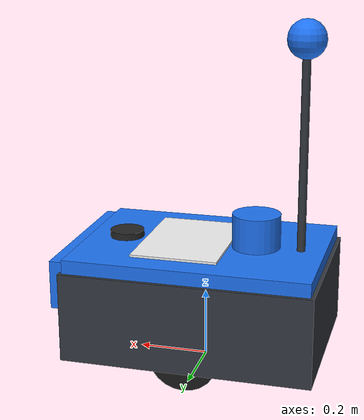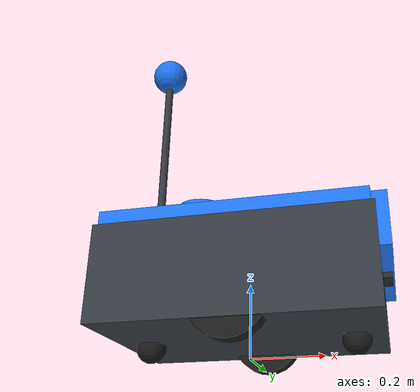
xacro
<?xml version="1.0"?>
<robot name="warehouse_amr" xmlns:xacro="http://www.ros.org/wiki/xacro">

  <!-- Arguments -->
  <xacro:arg name="robot_name" default="Alpha" />
  <xacro:arg name="robot_color" default="Blue" />
  <xacro:arg name="robot_namespace" default="robot_alpha" />
  <xacro:arg name="robot_id" default="1" />

  <xacro:property name="name" value="$(arg robot_name)" />
  <xacro:property name="color" value="$(arg robot_color)" />
  <xacro:property name="ns" value="$(arg robot_namespace)" />
  <xacro:property name="id" value="$(arg robot_id)" />

  <!-- Dimensions -->
  <xacro:property name="chassis_length" value="0.72" />
  <xacro:property name="chassis_width" value="0.52" />
  <xacro:property name="chassis_height" value="0.26" />
  <xacro:property name="wheel_radius" value="0.10" />
  <xacro:property name="wheel_width" value="0.05" />
  <xacro:property name="wheel_separation" value="0.46" />
  <xacro:property name="caster_radius" value="0.04" />

  <!-- Colors Selection -->
  <material name="chassis_dark">
    <color rgba="0.2 0.22 0.25 1.0" />
  </material>

  <material name="robot_accent">
    <xacro:if value="${color == 'Blue'}">
      <color rgba="0.12 0.45 0.95 1.0" />
    </xacro:if>
    <xacro:if value="${color == 'Red'}">
      <color rgba="0.95 0.15 0.15 1.0" />
    </xacro:if>
    <xacro:if value="${color == 'Green'}">
      <color rgba="0.15 0.85 0.25 1.0" />
    </xacro:if>
    <xacro:if value="${color == 'Yellow'}">
      <color rgba="0.95 0.85 0.10 1.0" />
    </xacro:if>
    <xacro:if value="${color == 'Purple'}">
      <color rgba="0.75 0.18 0.92 1.0" />
    </xacro:if>
  </material>

  <xacro:if value="${color == 'Blue'}">
    <xacro:property name="gz_diffuse" value="0.12 0.45 0.95 1.0" />
    <xacro:property name="gz_ambient" value="0.10 0.35 0.85 1.0" />
    <xacro:property name="gz_emissive" value="0.08 0.20 0.45 1.0" />
  </xacro:if>
  <xacro:if value="${color == 'Red'}">
    <xacro:property name="gz_diffuse" value="0.95 0.15 0.15 1.0" />
    <xacro:property name="gz_ambient" value="0.85 0.10 0.10 1.0" />
    <xacro:property name="gz_emissive" value="0.45 0.08 0.08 1.0" />
  </xacro:if>
  <xacro:if value="${color == 'Green'}">
    <xacro:property name="gz_diffuse" value="0.15 0.85 0.25 1.0" />
    <xacro:property name="gz_ambient" value="0.10 0.75 0.20 1.0" />
    <xacro:property name="gz_emissive" value="0.08 0.40 0.12 1.0" />
  </xacro:if>
  <xacro:if value="${color == 'Yellow'}">
    <xacro:property name="gz_diffuse" value="0.95 0.85 0.10 1.0" />
    <xacro:property name="gz_ambient" value="0.85 0.75 0.08 1.0" />
    <xacro:property name="gz_emissive" value="0.40 0.35 0.04 1.0" />
  </xacro:if>
  <xacro:if value="${color == 'Purple'}">
    <xacro:property name="gz_diffuse" value="0.75 0.18 0.92 1.0" />
    <xacro:property name="gz_ambient" value="0.65 0.12 0.80 1.0" />
    <xacro:property name="gz_emissive" value="0.35 0.08 0.40 1.0" />
  </xacro:if>

  <material name="wheel_black">
    <color rgba="0.1 0.1 0.1 1.0" />
  </material>
  <material name="sensor_black">
    <color rgba="0.15 0.15 0.15 1.0" />
  </material>
  <material name="badge_white">
    <color rgba="0.95 0.95 0.95 1.0" />
  </material>

  <!-- Base Footprint -->
  <link name="${ns}/base_footprint" />

  <joint name="${ns}/base_joint" type="fixed">
    <parent link="${ns}/base_footprint" />
    <child link="${ns}/base_link" />
    <origin xyz="0 0 ${wheel_radius}" rpy="0 0 0" />
  </joint>

  <!-- Base Link / Lower Chassis -->
  <link name="${ns}/base_link">
    <inertial>
      <mass value="25.0" />
      <origin xyz="0 0 0.08" rpy="0 0 0" />
      <inertia ixx="0.45" ixy="0.0" ixz="0.0"
               iyy="0.65" iyz="0.0" izz="0.85" />
    </inertial>

    <!-- Main Rugged Body -->
    <visual>
      <origin xyz="0 0 0.08" rpy="0 0 0" />
      <geometry>
        <box size="${chassis_length} ${chassis_width} ${chassis_height}" />
      </geometry>
      <material name="chassis_dark" />
    </visual>
    <collision>
      <origin xyz="0 0 0.08" rpy="0 0 0" />
      <geometry>
        <box size="${chassis_length} ${chassis_width} ${chassis_height}" />
      </geometry>
    </collision>

  </link>

  <!-- Visual Colored Shell & High-Visibility Accent as dedicated link for Gazebo and RViz -->
  <link name="${ns}/shell_link">
    <inertial>
      <mass value="0.5" />
      <origin xyz="0 0 0" rpy="0 0 0" />
      <inertia ixx="0.005" ixy="0" ixz="0" iyy="0.005" iyz="0" izz="0.005" />
    </inertial>
    <!-- Visual Colored Shell Top -->
    <visual>
      <origin xyz="0 0 0" rpy="0 0 0" />
      <geometry>
        <box size="${chassis_length - 0.02} ${chassis_width - 0.02} 0.04" />
      </geometry>
      <material name="robot_accent" />
    </visual>
    <!-- Front Colored Bumper Accent -->
    <visual>
      <origin xyz="${chassis_length/2.0} 0 -0.06" rpy="0 0 0" />
      <geometry>
        <box size="0.06 ${chassis_width - 0.04} 0.14" />
      </geometry>
      <material name="robot_accent" />
    </visual>
    <!-- Glowing Top Beacon -->
    <visual>
      <origin xyz="-0.15 0 0.07" rpy="0 0 0" />
      <geometry>
        <cylinder radius="0.07" length="0.10" />
      </geometry>
      <material name="robot_accent" />
    </visual>
    <!-- High-Visibility Vertical Indicator Mast at Back of Robot -->
    <visual>
      <origin xyz="-0.28 0 0.32" rpy="0 0 0" />
      <geometry>
        <cylinder radius="0.012" length="0.60" />
      </geometry>
      <material name="chassis_dark" />
    </visual>
    <!-- Top Identity Orb on Mast -->
    <visual>
      <origin xyz="-0.28 0 0.62" rpy="0 0 0" />
      <geometry>
        <sphere radius="0.055" />
      </geometry>
      <material name="robot_accent" />
    </visual>
    <!-- Identification Nameplate Badge on Deck -->
    <visual>
      <origin xyz="0.05 0 0.022" rpy="0 0 0" />
      <geometry>
        <box size="0.25 0.35 0.01" />
      </geometry>
      <material name="badge_white" />
    </visual>
  </link>

  <joint name="${ns}/shell_joint" type="fixed">
    <parent link="${ns}/base_link" />
    <child link="${ns}/shell_link" />
    <origin xyz="0 0 ${chassis_height/2.0 + 0.08 + 0.02}" rpy="0 0 0" />
  </joint>

  <!-- Left Drive Wheel -->
  <link name="${ns}/left_wheel_link">
    <inertial>
      <mass value="2.5" />
      <origin xyz="0 0 0" rpy="0 0 0" />
      <inertia ixx="0.007" ixy="0" ixz="0" iyy="0.007" iyz="0" izz="0.0125" />
    </inertial>
    <visual>
      <origin xyz="0 0 0" rpy="${pi/2} 0 0" />
      <geometry>
        <cylinder radius="${wheel_radius}" length="${wheel_width}" />
      </geometry>
      <material name="wheel_black" />
    </visual>
    <collision>
      <origin xyz="0 0 0" rpy="${pi/2} 0 0" />
      <geometry>
        <cylinder radius="${wheel_radius}" length="${wheel_width}" />
      </geometry>
    </collision>
  </link>

  <joint name="${ns}/left_wheel_joint" type="continuous">
    <parent link="${ns}/base_link" />
    <child link="${ns}/left_wheel_link" />
    <origin xyz="0 ${wheel_separation/2.0} 0" rpy="0 0 0" />
    <axis xyz="0 1 0" />
  </joint>

  <!-- Right Drive Wheel -->
  <link name="${ns}/right_wheel_link">
    <inertial>
      <mass value="2.5" />
      <origin xyz="0 0 0" rpy="0 0 0" />
      <inertia ixx="0.007" ixy="0" ixz="0" iyy="0.007" iyz="0" izz="0.0125" />
    </inertial>
    <visual>
      <origin xyz="0 0 0" rpy="${pi/2} 0 0" />
      <geometry>
        <cylinder radius="${wheel_radius}" length="${wheel_width}" />
      </geometry>
      <material name="wheel_black" />
    </visual>
    <collision>
      <origin xyz="0 0 0" rpy="${pi/2} 0 0" />
      <geometry>
        <cylinder radius="${wheel_radius}" length="${wheel_width}" />
      </geometry>
    </collision>
  </link>

  <joint name="${ns}/right_wheel_joint" type="continuous">
    <parent link="${ns}/base_link" />
    <child link="${ns}/right_wheel_link" />
    <origin xyz="0 -${wheel_separation/2.0} 0" rpy="0 0 0" />
    <axis xyz="0 1 0" />
  </joint>

  <!-- Front Caster Wheel -->
  <link name="${ns}/front_caster_link">
    <inertial>
      <mass value="0.8" />
      <origin xyz="0 0 0" rpy="0 0 0" />
      <inertia ixx="0.0005" ixy="0" ixz="0" iyy="0.0005" iyz="0" izz="0.0005" />
    </inertial>
    <visual>
      <origin xyz="0 0 0" rpy="0 0 0" />
      <geometry>
        <sphere radius="${caster_radius}" />
      </geometry>
      <material name="wheel_black" />
    </visual>
    <collision>
      <origin xyz="0 0 0" rpy="0 0 0" />
      <geometry>
        <sphere radius="${caster_radius}" />
      </geometry>
      <surface>
        <friction>
          <ode>
            <mu>0.01</mu>
            <mu2>0.01</mu2>
          </ode>
        </friction>
      </surface>
    </collision>
  </link>

  <joint name="${ns}/front_caster_joint" type="fixed">
    <parent link="${ns}/base_link" />
    <child link="${ns}/front_caster_link" />
    <origin xyz="${chassis_length/2.0 - 0.08} 0 -${wheel_radius - caster_radius}" rpy="0 0 0" />
  </joint>

  <!-- Rear Caster Wheel -->
  <link name="${ns}/rear_caster_link">
    <inertial>
      <mass value="0.8" />
      <origin xyz="0 0 0" rpy="0 0 0" />
      <inertia ixx="0.0005" ixy="0" ixz="0" iyy="0.0005" iyz="0" izz="0.0005" />
    </inertial>
    <visual>
      <origin xyz="0 0 0" rpy="0 0 0" />
      <geometry>
        <sphere radius="${caster_radius}" />
      </geometry>
      <material name="wheel_black" />
    </visual>
    <collision>
      <origin xyz="0 0 0" rpy="0 0 0" />
      <geometry>
        <sphere radius="${caster_radius}" />
      </geometry>
      <surface>
        <friction>
          <ode>
            <mu>0.01</mu>
            <mu2>0.01</mu2>
          </ode>
        </friction>
      </surface>
    </collision>
  </link>

  <joint name="${ns}/rear_caster_joint" type="fixed">
    <parent link="${ns}/base_link" />
    <child link="${ns}/rear_caster_link" />
    <origin xyz="-${chassis_length/2.0 - 0.08} 0 -${wheel_radius - caster_radius}" rpy="0 0 0" />
  </joint>

  <!-- LiDAR Sensor -->
  <link name="${ns}/lidar_link">
    <inertial>
      <mass value="0.3" />
      <origin xyz="0 0 0" rpy="0 0 0" />
      <inertia ixx="0.0002" ixy="0" ixz="0" iyy="0.0002" iyz="0" izz="0.0002" />
    </inertial>
    <visual>
      <origin xyz="0 0 0" rpy="0 0 0" />
      <geometry>
        <cylinder radius="0.05" length="0.06" />
      </geometry>
      <material name="sensor_black" />
    </visual>
    <collision>
      <origin xyz="0 0 0" rpy="0 0 0" />
      <geometry>
        <cylinder radius="0.05" length="0.06" />
      </geometry>
    </collision>
  </link>

  <joint name="${ns}/lidar_joint" type="fixed">
    <parent link="${ns}/base_link" />
    <child link="${ns}/lidar_link" />
    <origin xyz="${chassis_length/2.0 - 0.12} 0 ${chassis_height/2.0 + 0.11}" rpy="0 0 0" />
  </joint>

  <!-- Forward Camera Sensor -->
  <link name="${ns}/camera_link">
    <inertial>
      <mass value="0.1" />
      <origin xyz="0 0 0" rpy="0 0 0" />
      <inertia ixx="0.00005" ixy="0" ixz="0" iyy="0.00005" iyz="0" izz="0.00005" />
    </inertial>
    <visual>
      <origin xyz="0 0 0" rpy="0 0 0" />
      <geometry>
        <box size="0.03 0.08 0.03" />
      </geometry>
      <material name="sensor_black" />
    </visual>
  </link>

  <joint name="${ns}/camera_joint" type="fixed">
    <parent link="${ns}/base_link" />
    <child link="${ns}/camera_link" />
    <origin xyz="${chassis_length/2.0 + 0.01} 0 0.10" rpy="0 0 0" />
  </joint>

  <!-- IMU Sensor -->
  <link name="${ns}/imu_link">
    <inertial>
      <mass value="0.05" />
      <origin xyz="0 0 0" rpy="0 0 0" />
      <inertia ixx="0.00001" ixy="0" ixz="0" iyy="0.00001" iyz="0" izz="0.00001" />
    </inertial>
  </link>

  <joint name="${ns}/imu_joint" type="fixed">
    <parent link="${ns}/base_link" />
    <child link="${ns}/imu_link" />
    <origin xyz="0 0 0.05" rpy="0 0 0" />
  </joint>

  <!-- Gazebo Sensors and Diff Drive Plugins -->
  <gazebo reference="${ns}/base_link">
    <visual>
      <material>
        <diffuse>0.2 0.22 0.25 1.0</diffuse>
        <ambient>0.15 0.18 0.20 1.0</ambient>
      </material>
    </visual>
  </gazebo>

  <gazebo reference="${ns}/shell_link">
    <visual>
      <material>
        <diffuse>${gz_diffuse}</diffuse>
        <ambient>${gz_ambient}</ambient>
        <specular>0.6 0.6 0.6 1.0</specular>
        <emissive>${gz_emissive}</emissive>
      </material>
    </visual>
  </gazebo>

  <gazebo reference="${ns}/lidar_link">
    <sensor name="lidar" type="gpu_lidar">
      <pose relative_to="${ns}/lidar_link">0 0 0 0 0 0</pose>
      <topic>${ns}/scan</topic>
      <update_rate>15</update_rate>
      <ray>
        <scan>
          <horizontal>
            <samples>360</samples>
            <resolution>1</resolution>
            <min_angle>-3.14159</min_angle>
            <max_angle>3.14159</max_angle>
          </horizontal>
        </scan>
        <range>
          <min>0.15</min>
          <max>16.0</max>
          <resolution>0.01</resolution>
        </range>
      </ray>
      <always_on>1</always_on>
      <visualize>true</visualize>
    </sensor>
  </gazebo>

  <gazebo reference="${ns}/camera_link">
    <sensor name="camera" type="camera">
      <pose relative_to="${ns}/camera_link">0 0 0 0 0 0</pose>
      <topic>${ns}/camera/image_raw</topic>
      <update_rate>15</update_rate>
      <camera>
        <horizontal_fov>1.3962634</horizontal_fov>
        <image>
          <width>640</width>
          <height>480</height>
          <format>R8G8B8</format>
        </image>
        <clip>
          <near>0.1</near>
          <far>20.0</far>
        </clip>
      </camera>
      <always_on>1</always_on>
      <visualize>true</visualize>
    </sensor>
  </gazebo>

  <gazebo reference="${ns}/imu_link">
    <sensor name="imu" type="imu">
      <pose relative_to="${ns}/imu_link">0 0 0 0 0 0</pose>
      <topic>${ns}/imu</topic>
      <update_rate>50</update_rate>
      <always_on>1</always_on>
      <visualize>false</visualize>
    </sensor>
  </gazebo>

  <!-- Gazebo Differential Drive Plugin -->
  <gazebo>
    <plugin
      filename="gz-sim-diff-drive-system"
      name="gz::sim::systems::DiffDrive">
      <left_joint>${ns}/left_wheel_joint</left_joint>
      <right_joint>${ns}/right_wheel_joint</right_joint>
      <wheel_separation>${wheel_separation}</wheel_separation>
      <wheel_radius>${wheel_radius}</wheel_radius>
      <max_linear_acceleration>1.5</max_linear_acceleration>
      <min_linear_acceleration>-1.5</min_linear_acceleration>
      <max_angular_acceleration>2.0</max_angular_acceleration>
      <min_angular_acceleration>-2.0</min_angular_acceleration>
      <max_linear_velocity>3.0</max_linear_velocity>
      <min_linear_velocity>-3.0</min_linear_velocity>
      <max_angular_velocity>2.5</max_angular_velocity>
      <min_angular_velocity>-2.5</min_angular_velocity>
      <topic>${ns}/cmd_vel</topic>
      <odom_topic>${ns}/odom</odom_topic>
      <tf_topic>${ns}/tf</tf_topic>
      <frame_id>${ns}/odom</frame_id>
      <child_frame_id>${ns}/base_footprint</child_frame_id>
      <odom_publisher_frequency>30</odom_publisher_frequency>
    </plugin>

    <plugin
      filename="gz-sim-joint-state-publisher-system"
      name="gz::sim::systems::JointStatePublisher">
      <topic>${ns}/joint_states</topic>
      <joint_name>${ns}/left_wheel_joint</joint_name>
      <joint_name>${ns}/right_wheel_joint</joint_name>
    </plugin>
  </gazebo>

</robot>
